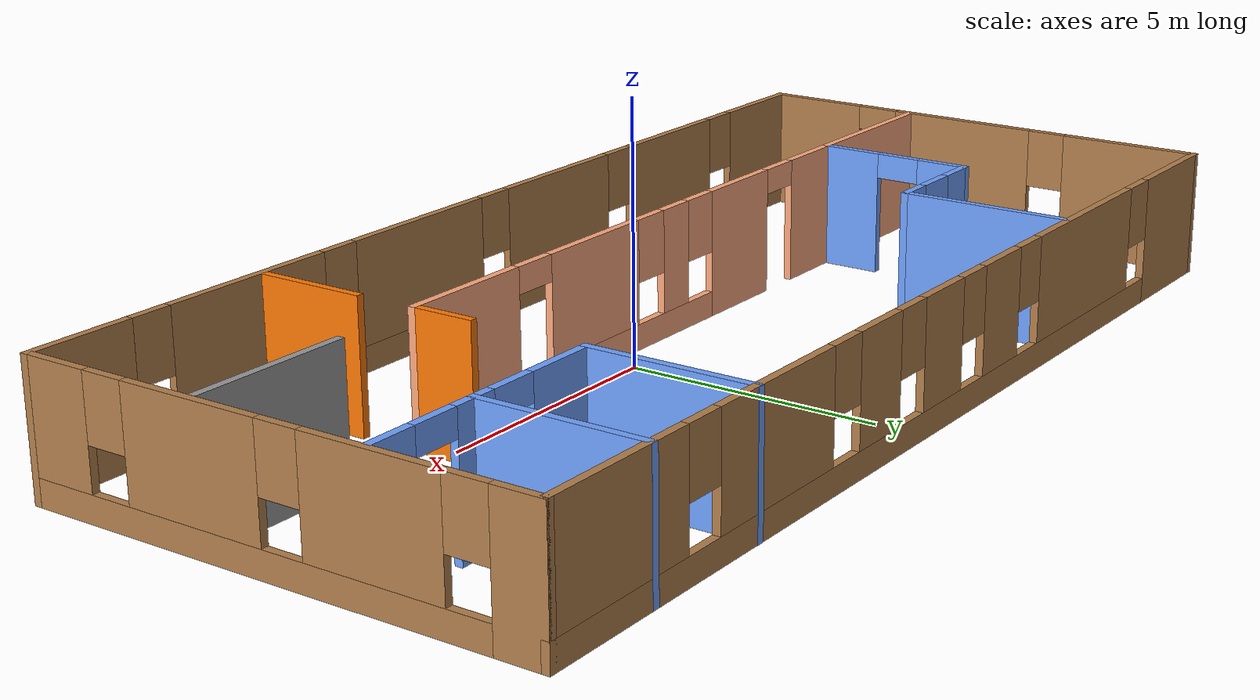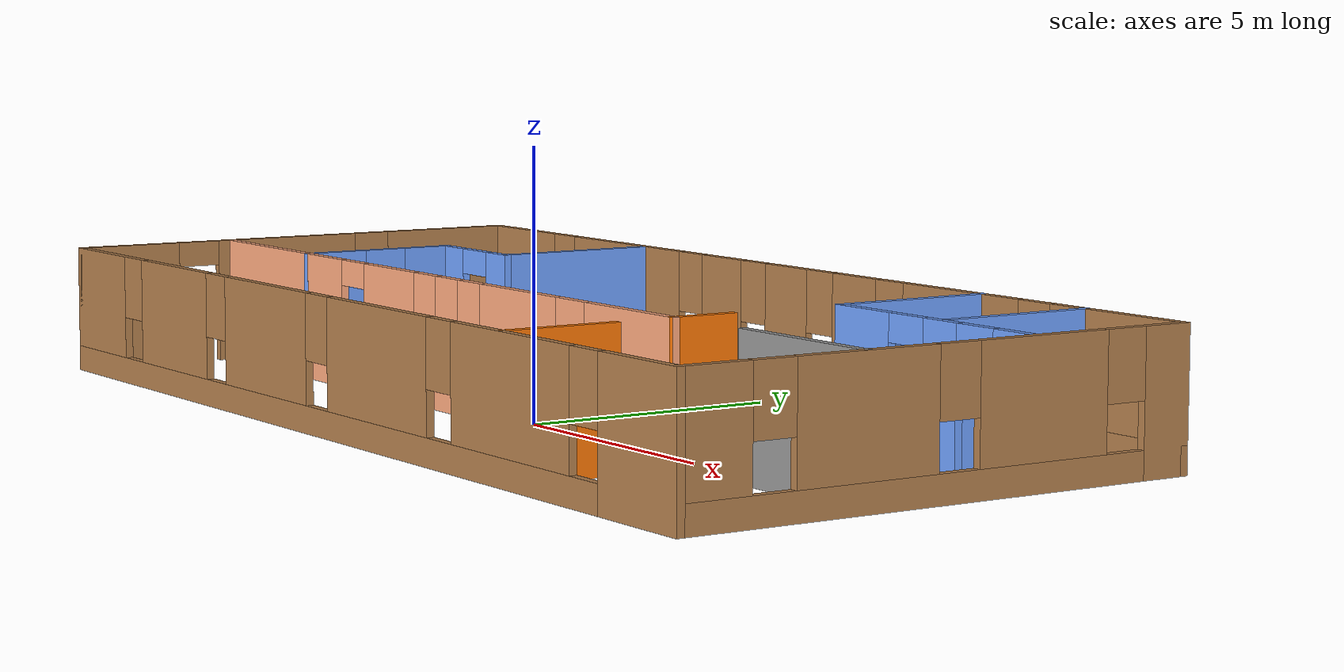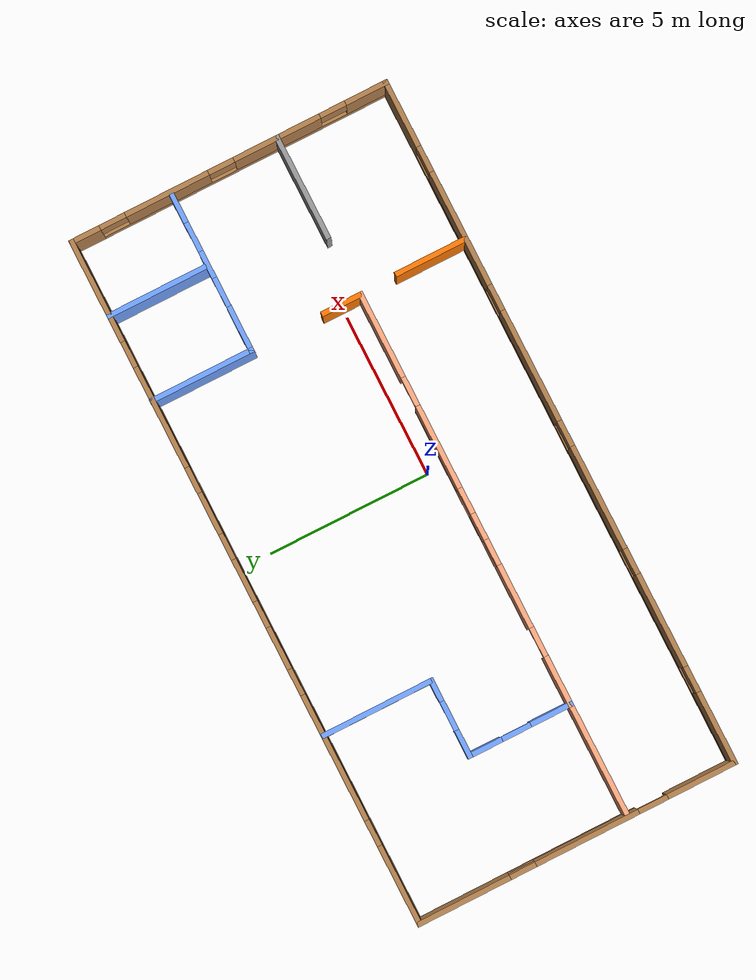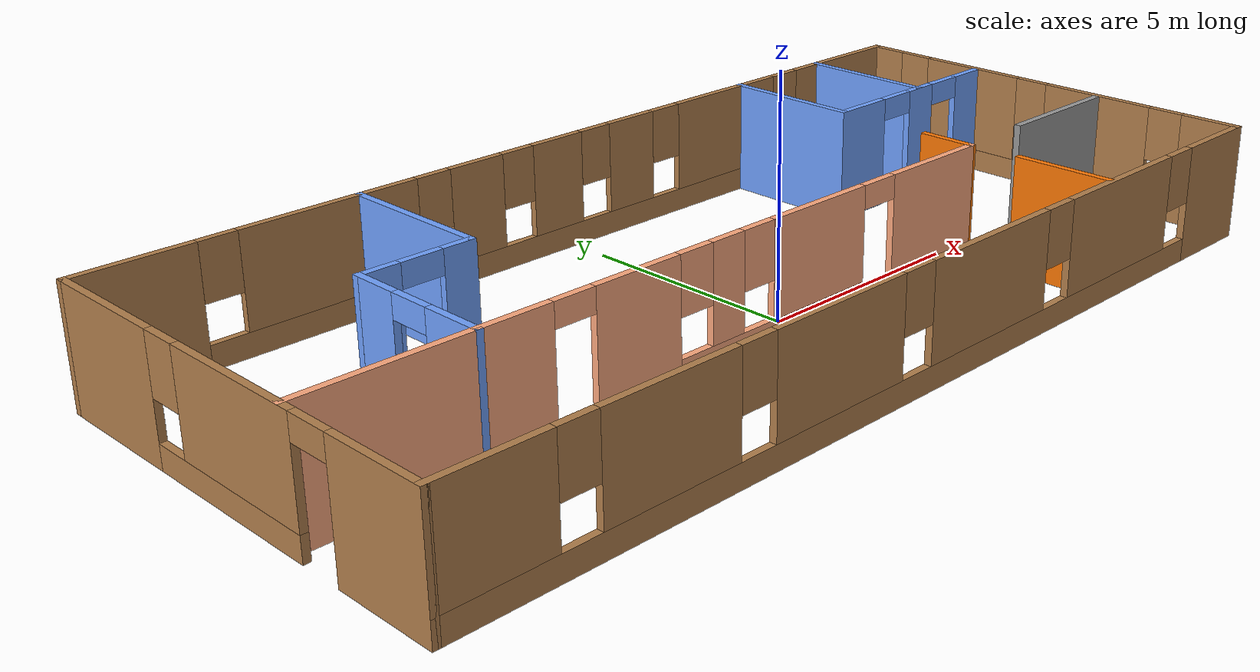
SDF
<?xml version='1.0'?>
<sdf version='1.6'>
  <model name='MyOffice'>
    <pose frame=''>-0.456046 1.03485 0 0 -0 0</pose>
    <link name='Wall_2'>
      <pose frame=''>0 4.92028 0 0 -0 1.3e-05</pose>
      <visual name='Wall_2_Visual_0'>
        <pose frame=''>-9.49743 0 1.25 0 -0 0</pose>
        <geometry>
          <box>
            <size>2.50514 0.15 2.5</size>
          </box>
        </geometry>
        <material>
          <script>
            <uri>file://media/materials/scripts/gazebo.material</uri>
            <name>Gazebo/Wood</name>
          </script>
          <ambient>0.807843 0.807843 0.807843 1</ambient>
        </material>
        <meta>
          <layer>0</layer>
        </meta>
      </visual>
      <collision name='Wall_2_Collision_0'>
        <geometry>
          <box>
            <size>2.50514 0.15 2.5</size>
          </box>
        </geometry>
        <pose frame=''>-9.49743 0 1.25 0 -0 0</pose>
      </collision>
      <visual name='Wall_2_Visual_1'>
        <pose frame=''>1.25257 0 0.25 0 -0 0</pose>
        <geometry>
          <box>
            <size>18.9949 0.15 0.5</size>
          </box>
        </geometry>
        <material>
          <script>
            <uri>file://media/materials/scripts/gazebo.material</uri>
            <name>Gazebo/Wood</name>
          </script>
          <ambient>0.807843 0.807843 0.807843 1</ambient>
        </material>
        <meta>
          <layer>0</layer>
        </meta>
      </visual>
      <collision name='Wall_2_Collision_1'>
        <geometry>
          <box>
            <size>18.9949 0.15 0.5</size>
          </box>
        </geometry>
        <pose frame=''>1.25257 0 0.25 0 -0 0</pose>
      </collision>
      <visual name='Wall_2_Visual_2'>
        <pose frame=''>-5.48641 0 1.5 0 -0 0</pose>
        <geometry>
          <box>
            <size>3.91691 0.15 2</size>
          </box>
        </geometry>
        <material>
          <script>
            <uri>file://media/materials/scripts/gazebo.material</uri>
            <name>Gazebo/Wood</name>
          </script>
          <ambient>0.807843 0.807843 0.807843 1</ambient>
        </material>
        <meta>
          <layer>0</layer>
        </meta>
      </visual>
      <collision name='Wall_2_Collision_2'>
        <geometry>
          <box>
            <size>3.91691 0.15 2</size>
          </box>
        </geometry>
        <pose frame=''>-5.48641 0 1.5 0 -0 0</pose>
      </collision>
      <visual name='Wall_2_Visual_3'>
        <pose frame=''>-2.06906 0 1.5 0 -0 0</pose>
        <geometry>
          <box>
            <size>1.3178 0.15 2</size>
          </box>
        </geometry>
        <material>
          <script>
            <uri>file://media/materials/scripts/gazebo.material</uri>
            <name>Gazebo/Wood</name>
          </script>
          <ambient>0.807843 0.807843 0.807843 1</ambient>
        </material>
        <meta>
          <layer>0</layer>
        </meta>
      </visual>
      <collision name='Wall_2_Collision_3'>
        <geometry>
          <box>
            <size>1.3178 0.15 2</size>
          </box>
        </geometry>
        <pose frame=''>-2.06906 0 1.5 0 -0 0</pose>
      </collision>
      <visual name='Wall_2_Visual_4'>
        <pose frame=''>0.048739 0 1.5 0 -0 0</pose>
        <geometry>
          <box>
            <size>1.3178 0.15 2</size>
          </box>
        </geometry>
        <material>
          <script>
            <uri>file://media/materials/scripts/gazebo.material</uri>
            <name>Gazebo/Wood</name>
          </script>
          <ambient>0.807843 0.807843 0.807843 1</ambient>
        </material>
        <meta>
          <layer>0</layer>
        </meta>
      </visual>
      <collision name='Wall_2_Collision_4'>
        <geometry>
          <box>
            <size>1.3178 0.15 2</size>
          </box>
        </geometry>
        <pose frame=''>0.048739 0 1.5 0 -0 0</pose>
      </collision>
      <visual name='Wall_2_Visual_5'>
        <pose frame=''>2.15049 0 1.5 0 -0 0</pose>
        <geometry>
          <box>
            <size>1.28571 0.15 2</size>
          </box>
        </geometry>
        <material>
          <script>
            <uri>file://media/materials/scripts/gazebo.material</uri>
            <name>Gazebo/Wood</name>
          </script>
          <ambient>0.807843 0.807843 0.807843 1</ambient>
        </material>
        <meta>
          <layer>0</layer>
        </meta>
      </visual>
      <collision name='Wall_2_Collision_5'>
        <geometry>
          <box>
            <size>1.28571 0.15 2</size>
          </box>
        </geometry>
        <pose frame=''>2.15049 0 1.5 0 -0 0</pose>
      </collision>
      <visual name='Wall_2_Visual_6'>
        <pose frame=''>5.16675 0 1.5 0 -0 0</pose>
        <geometry>
          <box>
            <size>3.1468 0.15 2</size>
          </box>
        </geometry>
        <material>
          <script>
            <uri>file://media/materials/scripts/gazebo.material</uri>
            <name>Gazebo/Wood</name>
          </script>
          <ambient>0.807843 0.807843 0.807843 1</ambient>
        </material>
        <meta>
          <layer>0</layer>
        </meta>
      </visual>
      <collision name='Wall_2_Collision_6'>
        <geometry>
          <box>
            <size>3.1468 0.15 2</size>
          </box>
        </geometry>
        <pose frame=''>5.16675 0 1.5 0 -0 0</pose>
      </collision>
      <visual name='Wall_2_Visual_7'>
        <pose frame=''>9.14507 0 1.5 0 -0 0</pose>
        <geometry>
          <box>
            <size>3.20985 0.15 2</size>
          </box>
        </geometry>
        <material>
          <script>
            <uri>file://media/materials/scripts/gazebo.material</uri>
            <name>Gazebo/Wood</name>
          </script>
          <ambient>0.807843 0.807843 0.807843 1</ambient>
        </material>
        <meta>
          <layer>0</layer>
        </meta>
      </visual>
      <collision name='Wall_2_Collision_7'>
        <geometry>
          <box>
            <size>3.20985 0.15 2</size>
          </box>
        </geometry>
        <pose frame=''>9.14507 0 1.5 0 -0 0</pose>
      </collision>
      <visual name='Wall_2_Visual_8'>
        <pose frame=''>-7.84486 0 1.9 0 -0 0</pose>
        <geometry>
          <box>
            <size>0.8 0.15 1.2</size>
          </box>
        </geometry>
        <material>
          <script>
            <uri>file://media/materials/scripts/gazebo.material</uri>
            <name>Gazebo/Wood</name>
          </script>
          <ambient>0.807843 0.807843 0.807843 1</ambient>
        </material>
        <meta>
          <layer>0</layer>
        </meta>
      </visual>
      <collision name='Wall_2_Collision_8'>
        <geometry>
          <box>
            <size>0.8 0.15 1.2</size>
          </box>
        </geometry>
        <pose frame=''>-7.84486 0 1.9 0 -0 0</pose>
      </collision>
      <visual name='Wall_2_Visual_9'>
        <pose frame=''>-3.12796 0 1.9 0 -0 0</pose>
        <geometry>
          <box>
            <size>0.8 0.15 1.2</size>
          </box>
        </geometry>
        <material>
          <script>
            <uri>file://media/materials/scripts/gazebo.material</uri>
            <name>Gazebo/Wood</name>
          </script>
          <ambient>0.807843 0.807843 0.807843 1</ambient>
        </material>
        <meta>
          <layer>0</layer>
        </meta>
      </visual>
      <collision name='Wall_2_Collision_9'>
        <geometry>
          <box>
            <size>0.8 0.15 1.2</size>
          </box>
        </geometry>
        <pose frame=''>-3.12796 0 1.9 0 -0 0</pose>
      </collision>
      <visual name='Wall_2_Visual_10'>
        <pose frame=''>-1.01016 0 1.9 0 -0 0</pose>
        <geometry>
          <box>
            <size>0.8 0.15 1.2</size>
          </box>
        </geometry>
        <material>
          <script>
            <uri>file://media/materials/scripts/gazebo.material</uri>
            <name>Gazebo/Wood</name>
          </script>
          <ambient>0.807843 0.807843 0.807843 1</ambient>
        </material>
        <meta>
          <layer>0</layer>
        </meta>
      </visual>
      <collision name='Wall_2_Collision_10'>
        <geometry>
          <box>
            <size>0.8 0.15 1.2</size>
          </box>
        </geometry>
        <pose frame=''>-1.01016 0 1.9 0 -0 0</pose>
      </collision>
      <visual name='Wall_2_Visual_11'>
        <pose frame=''>1.10764 0 1.9 0 -0 0</pose>
        <geometry>
          <box>
            <size>0.8 0.15 1.2</size>
          </box>
        </geometry>
        <material>
          <script>
            <uri>file://media/materials/scripts/gazebo.material</uri>
            <name>Gazebo/Wood</name>
          </script>
          <ambient>0.807843 0.807843 0.807843 1</ambient>
        </material>
        <meta>
          <layer>0</layer>
        </meta>
      </visual>
      <collision name='Wall_2_Collision_11'>
        <geometry>
          <box>
            <size>0.8 0.15 1.2</size>
          </box>
        </geometry>
        <pose frame=''>1.10764 0 1.9 0 -0 0</pose>
      </collision>
      <visual name='Wall_2_Visual_12'>
        <pose frame=''>3.19335 0 1.9 0 -0 0</pose>
        <geometry>
          <box>
            <size>0.8 0.15 1.2</size>
          </box>
        </geometry>
        <material>
          <script>
            <uri>file://media/materials/scripts/gazebo.material</uri>
            <name>Gazebo/Wood</name>
          </script>
          <ambient>0.807843 0.807843 0.807843 1</ambient>
        </material>
        <meta>
          <layer>0</layer>
        </meta>
      </visual>
      <collision name='Wall_2_Collision_12'>
        <geometry>
          <box>
            <size>0.8 0.15 1.2</size>
          </box>
        </geometry>
        <pose frame=''>3.19335 0 1.9 0 -0 0</pose>
      </collision>
      <visual name='Wall_2_Visual_13'>
        <pose frame=''>7.14015 0 1.9 0 -0 0</pose>
        <geometry>
          <box>
            <size>0.8 0.15 1.2</size>
          </box>
        </geometry>
        <material>
          <script>
            <uri>file://media/materials/scripts/gazebo.material</uri>
            <name>Gazebo/Wood</name>
          </script>
          <ambient>0.807843 0.807843 0.807843 1</ambient>
        </material>
        <meta>
          <layer>0</layer>
        </meta>
      </visual>
      <collision name='Wall_2_Collision_13'>
        <geometry>
          <box>
            <size>0.8 0.15 1.2</size>
          </box>
        </geometry>
        <pose frame=''>7.14015 0 1.9 0 -0 0</pose>
      </collision>
    </link>
    <link name='Wall_22'>
      <collision name='Wall_22_Collision'>
        <geometry>
          <box>
            <size>3.5 0.15 2.5</size>
          </box>
        </geometry>
        <pose frame=''>0 0 1.25 0 -0 0</pose>
      </collision>
      <visual name='Wall_22_Visual'>
        <pose frame=''>0 0 1.25 0 -0 0</pose>
        <geometry>
          <box>
            <size>3.5 0.15 2.5</size>
          </box>
        </geometry>
        <material>
          <script>
            <uri>file://media/materials/scripts/gazebo.material</uri>
            <name>Gazebo/Grey</name>
          </script>
          <ambient>0.439216 0.635294 1 1</ambient>
        </material>
        <meta>
          <layer>0</layer>
        </meta>
      </visual>
      <pose frame=''>-4.80577 3.22828 0 0 0 -1.57091</pose>
    </link>
    <link name='Wall_23'>
      <pose frame=''>-5.98095 1.55315 0 0 -0 3.14159</pose>
      <visual name='Wall_23_Visual_0'>
        <pose frame=''>-0.887295 0 1.25 0 -0 0</pose>
        <geometry>
          <box>
            <size>0.725409 0.15 2.5</size>
          </box>
        </geometry>
        <material>
          <script>
            <uri>file://media/materials/scripts/gazebo.material</uri>
            <name>Gazebo/Grey</name>
          </script>
          <ambient>0.439216 0.635294 1 1</ambient>
        </material>
        <meta>
          <layer>0</layer>
        </meta>
      </visual>
      <collision name='Wall_23_Collision_0'>
        <geometry>
          <box>
            <size>0.725409 0.15 2.5</size>
          </box>
        </geometry>
        <pose frame=''>-0.887295 0 1.25 0 -0 0</pose>
      </collision>
      <visual name='Wall_23_Visual_1'>
        <pose frame=''>0.812705 0 1.25 0 -0 0</pose>
        <geometry>
          <box>
            <size>0.874591 0.15 2.5</size>
          </box>
        </geometry>
        <material>
          <script>
            <uri>file://media/materials/scripts/gazebo.material</uri>
            <name>Gazebo/Grey</name>
          </script>
          <ambient>0.439216 0.635294 1 1</ambient>
        </material>
        <meta>
          <layer>0</layer>
        </meta>
      </visual>
      <collision name='Wall_23_Collision_1'>
        <geometry>
          <box>
            <size>0.874591 0.15 2.5</size>
          </box>
        </geometry>
        <pose frame=''>0.812705 0 1.25 0 -0 0</pose>
      </collision>
      <visual name='Wall_23_Visual_2'>
        <pose frame=''>-0.074591 0 2.25 0 -0 0</pose>
        <geometry>
          <box>
            <size>0.9 0.15 0.5</size>
          </box>
        </geometry>
        <material>
          <script>
            <uri>file://media/materials/scripts/gazebo.material</uri>
            <name>Gazebo/Grey</name>
          </script>
          <ambient>0.439216 0.635294 1 1</ambient>
        </material>
        <meta>
          <layer>0</layer>
        </meta>
      </visual>
      <collision name='Wall_23_Collision_2'>
        <geometry>
          <box>
            <size>0.9 0.15 0.5</size>
          </box>
        </geometry>
        <pose frame=''>-0.074591 0 2.25 0 -0 0</pose>
      </collision>
    </link>
    <link name='Wall_24'>
      <pose frame=''>-7.15595 -0.024354 0 0 0 -1.5708</pose>
      <visual name='Wall_24_Visual_0'>
        <pose frame=''>-1.11012 0 1.25 0 -0 0</pose>
        <geometry>
          <box>
            <size>1.08494 0.15 2.5</size>
          </box>
        </geometry>
        <material>
          <script>
            <uri>file://media/materials/scripts/gazebo.material</uri>
            <name>Gazebo/Grey</name>
          </script>
          <ambient>0.439216 0.635294 1 1</ambient>
        </material>
        <meta>
          <layer>0</layer>
        </meta>
      </visual>
      <collision name='Wall_24_Collision_0'>
        <geometry>
          <box>
            <size>1.08494 0.15 2.5</size>
          </box>
        </geometry>
        <pose frame=''>-1.11012 0 1.25 0 -0 0</pose>
      </collision>
      <visual name='Wall_24_Visual_1'>
        <pose frame=''>0.992469 0 1.25 0 -0 0</pose>
        <geometry>
          <box>
            <size>1.32024 0.15 2.5</size>
          </box>
        </geometry>
        <material>
          <script>
            <uri>file://media/materials/scripts/gazebo.material</uri>
            <name>Gazebo/Grey</name>
          </script>
          <ambient>0.439216 0.635294 1 1</ambient>
        </material>
        <meta>
          <layer>0</layer>
        </meta>
      </visual>
      <collision name='Wall_24_Collision_1'>
        <geometry>
          <box>
            <size>1.32024 0.15 2.5</size>
          </box>
        </geometry>
        <pose frame=''>0.992469 0 1.25 0 -0 0</pose>
      </collision>
      <visual name='Wall_24_Visual_2'>
        <pose frame=''>-0.117651 0 2.25 0 -0 0</pose>
        <geometry>
          <box>
            <size>0.9 0.15 0.5</size>
          </box>
        </geometry>
        <material>
          <script>
            <uri>file://media/materials/scripts/gazebo.material</uri>
            <name>Gazebo/Grey</name>
          </script>
          <ambient>0.439216 0.635294 1 1</ambient>
        </material>
        <meta>
          <layer>0</layer>
        </meta>
      </visual>
      <collision name='Wall_24_Collision_2'>
        <geometry>
          <box>
            <size>0.9 0.15 0.5</size>
          </box>
        </geometry>
        <pose frame=''>-0.117651 0 2.25 0 -0 0</pose>
      </collision>
    </link>
    <link name='Wall_25'>
      <pose frame=''>-0.730954 -1.60185 0 0 -0 0</pose>
      <visual name='Wall_25_Visual_0'>
        <pose frame=''>-5.71218 0 1.25 0 -0 0</pose>
        <geometry>
          <box>
            <size>1.57577 0.15 2.5</size>
          </box>
        </geometry>
        <material>
          <script>
            <uri>file://media/materials/scripts/gazebo.material</uri>
            <name>Gazebo/Grey</name>
          </script>
          <ambient>1 0.666667 0.498039 1</ambient>
        </material>
        <meta>
          <layer>0</layer>
        </meta>
      </visual>
      <collision name='Wall_25_Collision_0'>
        <geometry>
          <box>
            <size>1.57577 0.15 2.5</size>
          </box>
        </geometry>
        <pose frame=''>-5.71218 0 1.25 0 -0 0</pose>
      </collision>
      <visual name='Wall_25_Visual_1'>
        <pose frame=''>-3.04377 0 1.25 0 -0 0</pose>
        <geometry>
          <box>
            <size>1.96103 0.15 2.5</size>
          </box>
        </geometry>
        <material>
          <script>
            <uri>file://media/materials/scripts/gazebo.material</uri>
            <name>Gazebo/Grey</name>
          </script>
          <ambient>1 0.666667 0.498039 1</ambient>
        </material>
        <meta>
          <layer>0</layer>
        </meta>
      </visual>
      <collision name='Wall_25_Collision_1'>
        <geometry>
          <box>
            <size>1.96103 0.15 2.5</size>
          </box>
        </geometry>
        <pose frame=''>-3.04377 0 1.25 0 -0 0</pose>
      </collision>
      <visual name='Wall_25_Visual_2'>
        <pose frame=''>5.16443 0 1.25 0 -0 0</pose>
        <geometry>
          <box>
            <size>2.67125 0.15 2.5</size>
          </box>
        </geometry>
        <material>
          <script>
            <uri>file://media/materials/scripts/gazebo.material</uri>
            <name>Gazebo/Grey</name>
          </script>
          <ambient>1 0.666667 0.498039 1</ambient>
        </material>
        <meta>
          <layer>0</layer>
        </meta>
      </visual>
      <collision name='Wall_25_Collision_2'>
        <geometry>
          <box>
            <size>2.67125 0.15 2.5</size>
          </box>
        </geometry>
        <pose frame=''>5.16443 0 1.25 0 -0 0</pose>
      </collision>
      <visual name='Wall_25_Visual_3'>
        <pose frame=''>0.432774 0 0.25 0 -0 0</pose>
        <geometry>
          <box>
            <size>4.99207 0.15 0.5</size>
          </box>
        </geometry>
        <material>
          <script>
            <uri>file://media/materials/scripts/gazebo.material</uri>
            <name>Gazebo/Grey</name>
          </script>
          <ambient>1 0.666667 0.498039 1</ambient>
        </material>
        <meta>
          <layer>0</layer>
        </meta>
      </visual>
      <collision name='Wall_25_Collision_3'>
        <geometry>
          <box>
            <size>4.99207 0.15 0.5</size>
          </box>
        </geometry>
        <pose frame=''>0.432774 0 0.25 0 -0 0</pose>
      </collision>
      <visual name='Wall_25_Visual_4'>
        <pose frame=''>-0.85784 0 1.5 0 -0 0</pose>
        <geometry>
          <box>
            <size>0.810835 0.15 2</size>
          </box>
        </geometry>
        <material>
          <script>
            <uri>file://media/materials/scripts/gazebo.material</uri>
            <name>Gazebo/Grey</name>
          </script>
          <ambient>1 0.666667 0.498039 1</ambient>
        </material>
        <meta>
          <layer>0</layer>
        </meta>
      </visual>
      <collision name='Wall_25_Collision_4'>
        <geometry>
          <box>
            <size>0.810835 0.15 2</size>
          </box>
        </geometry>
        <pose frame=''>-0.85784 0 1.5 0 -0 0</pose>
      </collision>
      <visual name='Wall_25_Visual_5'>
        <pose frame=''>1.63819 0 1.5 0 -0 0</pose>
        <geometry>
          <box>
            <size>2.58123 0.15 2</size>
          </box>
        </geometry>
        <material>
          <script>
            <uri>file://media/materials/scripts/gazebo.material</uri>
            <name>Gazebo/Grey</name>
          </script>
          <ambient>1 0.666667 0.498039 1</ambient>
        </material>
        <meta>
          <layer>0</layer>
        </meta>
      </visual>
      <collision name='Wall_25_Collision_5'>
        <geometry>
          <box>
            <size>2.58123 0.15 2</size>
          </box>
        </geometry>
        <pose frame=''>1.63819 0 1.5 0 -0 0</pose>
      </collision>
      <visual name='Wall_25_Visual_6'>
        <pose frame=''>-1.66326 0 1.9 0 -0 0</pose>
        <geometry>
          <box>
            <size>0.8 0.15 1.2</size>
          </box>
        </geometry>
        <material>
          <script>
            <uri>file://media/materials/scripts/gazebo.material</uri>
            <name>Gazebo/Grey</name>
          </script>
          <ambient>1 0.666667 0.498039 1</ambient>
        </material>
        <meta>
          <layer>0</layer>
        </meta>
      </visual>
      <collision name='Wall_25_Collision_6'>
        <geometry>
          <box>
            <size>0.8 0.15 1.2</size>
          </box>
        </geometry>
        <pose frame=''>-1.66326 0 1.9 0 -0 0</pose>
      </collision>
      <visual name='Wall_25_Visual_7'>
        <pose frame=''>-0.052423 0 1.9 0 -0 0</pose>
        <geometry>
          <box>
            <size>0.8 0.15 1.2</size>
          </box>
        </geometry>
        <material>
          <script>
            <uri>file://media/materials/scripts/gazebo.material</uri>
            <name>Gazebo/Grey</name>
          </script>
          <ambient>1 0.666667 0.498039 1</ambient>
        </material>
        <meta>
          <layer>0</layer>
        </meta>
      </visual>
      <collision name='Wall_25_Collision_7'>
        <geometry>
          <box>
            <size>0.8 0.15 1.2</size>
          </box>
        </geometry>
        <pose frame=''>-0.052423 0 1.9 0 -0 0</pose>
      </collision>
      <visual name='Wall_25_Visual_8'>
        <pose frame=''>-4.47429 0 2.25 0 -0 0</pose>
        <geometry>
          <box>
            <size>0.9 0.15 0.5</size>
          </box>
        </geometry>
        <material>
          <script>
            <uri>file://media/materials/scripts/gazebo.material</uri>
            <name>Gazebo/Grey</name>
          </script>
          <ambient>1 0.666667 0.498039 1</ambient>
        </material>
        <meta>
          <layer>0</layer>
        </meta>
      </visual>
      <collision name='Wall_25_Collision_8'>
        <geometry>
          <box>
            <size>0.9 0.15 0.5</size>
          </box>
        </geometry>
        <pose frame=''>-4.47429 0 2.25 0 -0 0</pose>
      </collision>
      <visual name='Wall_25_Visual_9'>
        <pose frame=''>3.37881 0 2.25 0 -0 0</pose>
        <geometry>
          <box>
            <size>0.9 0.15 0.5</size>
          </box>
        </geometry>
        <material>
          <script>
            <uri>file://media/materials/scripts/gazebo.material</uri>
            <name>Gazebo/Grey</name>
          </script>
          <ambient>1 0.666667 0.498039 1</ambient>
        </material>
        <meta>
          <layer>0</layer>
        </meta>
      </visual>
      <collision name='Wall_25_Collision_9'>
        <geometry>
          <box>
            <size>0.9 0.15 0.5</size>
          </box>
        </geometry>
        <pose frame=''>3.37881 0 2.25 0 -0 0</pose>
      </collision>
    </link>
    <link name='Wall_26'>
      <collision name='Wall_26_Collision'>
        <geometry>
          <box>
            <size>1.30526 0.15 2.5</size>
          </box>
        </geometry>
        <pose frame=''>0 0 1.25 0 -0 0</pose>
      </collision>
      <visual name='Wall_26_Visual'>
        <pose frame=''>0 0 1.25 0 -0 0</pose>
        <geometry>
          <box>
            <size>1.30526 0.15 2.5</size>
          </box>
        </geometry>
        <material>
          <script>
            <uri>file://media/materials/scripts/gazebo.material</uri>
            <name>Gazebo/Grey</name>
          </script>
          <ambient>0.996078 0.47451 0.0196078 1</ambient>
        </material>
        <meta>
          <layer>0</layer>
        </meta>
      </visual>
      <pose frame=''>5.69423 -1.02422 0 0 -0 1.57047</pose>
    </link>
    <link name='Wall_3'>
      <pose frame=''>10.675 -0.004579 0 0 0 -1.5708</pose>
      <visual name='Wall_3_Visual_0'>
        <pose frame=''>-4.52429 0 1.25 0 -0 0</pose>
        <geometry>
          <box>
            <size>0.951416 0.15 2.5</size>
          </box>
        </geometry>
        <material>
          <script>
            <uri>file://media/materials/scripts/gazebo.material</uri>
            <name>Gazebo/Wood</name>
          </script>
          <ambient>0.807843 0.807843 0.807843 1</ambient>
        </material>
        <meta>
          <layer>0</layer>
        </meta>
      </visual>
      <collision name='Wall_3_Collision_0'>
        <geometry>
          <box>
            <size>0.951416 0.15 2.5</size>
          </box>
        </geometry>
        <pose frame=''>-4.52429 0 1.25 0 -0 0</pose>
      </collision>
      <visual name='Wall_3_Visual_1'>
        <pose frame=''>0.475708 0 0.25 0 -0 0</pose>
        <geometry>
          <box>
            <size>9.04858 0.15 0.5</size>
          </box>
        </geometry>
        <material>
          <script>
            <uri>file://media/materials/scripts/gazebo.material</uri>
            <name>Gazebo/Wood</name>
          </script>
          <ambient>0.807843 0.807843 0.807843 1</ambient>
        </material>
        <meta>
          <layer>0</layer>
        </meta>
      </visual>
      <collision name='Wall_3_Collision_1'>
        <geometry>
          <box>
            <size>9.04858 0.15 0.5</size>
          </box>
        </geometry>
        <pose frame=''>0.475708 0 0.25 0 -0 0</pose>
      </collision>
      <visual name='Wall_3_Visual_2'>
        <pose frame=''>-1.94793 0 1.5 0 -0 0</pose>
        <geometry>
          <box>
            <size>2.60131 0.15 2</size>
          </box>
        </geometry>
        <material>
          <script>
            <uri>file://media/materials/scripts/gazebo.material</uri>
            <name>Gazebo/Wood</name>
          </script>
          <ambient>0.807843 0.807843 0.807843 1</ambient>
        </material>
        <meta>
          <layer>0</layer>
        </meta>
      </visual>
      <collision name='Wall_3_Collision_2'>
        <geometry>
          <box>
            <size>2.60131 0.15 2</size>
          </box>
        </geometry>
        <pose frame=''>-1.94793 0 1.5 0 -0 0</pose>
      </collision>
      <visual name='Wall_3_Visual_3'>
        <pose frame=''>1.50151 0 1.5 0 -0 0</pose>
        <geometry>
          <box>
            <size>2.69757 0.15 2</size>
          </box>
        </geometry>
        <material>
          <script>
            <uri>file://media/materials/scripts/gazebo.material</uri>
            <name>Gazebo/Wood</name>
          </script>
          <ambient>0.807843 0.807843 0.807843 1</ambient>
        </material>
        <meta>
          <layer>0</layer>
        </meta>
      </visual>
      <collision name='Wall_3_Collision_3'>
        <geometry>
          <box>
            <size>2.69757 0.15 2</size>
          </box>
        </geometry>
        <pose frame=''>1.50151 0 1.5 0 -0 0</pose>
      </collision>
      <visual name='Wall_3_Visual_4'>
        <pose frame=''>4.32515 0 1.5 0 -0 0</pose>
        <geometry>
          <box>
            <size>1.3497 0.15 2</size>
          </box>
        </geometry>
        <material>
          <script>
            <uri>file://media/materials/scripts/gazebo.material</uri>
            <name>Gazebo/Wood</name>
          </script>
          <ambient>0.807843 0.807843 0.807843 1</ambient>
        </material>
        <meta>
          <layer>0</layer>
        </meta>
      </visual>
      <collision name='Wall_3_Collision_4'>
        <geometry>
          <box>
            <size>1.3497 0.15 2</size>
          </box>
        </geometry>
        <pose frame=''>4.32515 0 1.5 0 -0 0</pose>
      </collision>
      <visual name='Wall_3_Visual_5'>
        <pose frame=''>-3.64858 0 1.9 0 -0 0</pose>
        <geometry>
          <box>
            <size>0.8 0.15 1.2</size>
          </box>
        </geometry>
        <material>
          <script>
            <uri>file://media/materials/scripts/gazebo.material</uri>
            <name>Gazebo/Wood</name>
          </script>
          <ambient>0.807843 0.807843 0.807843 1</ambient>
        </material>
        <meta>
          <layer>0</layer>
        </meta>
      </visual>
      <collision name='Wall_3_Collision_5'>
        <geometry>
          <box>
            <size>0.8 0.15 1.2</size>
          </box>
        </geometry>
        <pose frame=''>-3.64858 0 1.9 0 -0 0</pose>
      </collision>
      <visual name='Wall_3_Visual_6'>
        <pose frame=''>-0.247275 0 1.9 0 -0 0</pose>
        <geometry>
          <box>
            <size>0.8 0.15 1.2</size>
          </box>
        </geometry>
        <material>
          <script>
            <uri>file://media/materials/scripts/gazebo.material</uri>
            <name>Gazebo/Wood</name>
          </script>
          <ambient>0.807843 0.807843 0.807843 1</ambient>
        </material>
        <meta>
          <layer>0</layer>
        </meta>
      </visual>
      <collision name='Wall_3_Collision_6'>
        <geometry>
          <box>
            <size>0.8 0.15 1.2</size>
          </box>
        </geometry>
        <pose frame=''>-0.247275 0 1.9 0 -0 0</pose>
      </collision>
      <visual name='Wall_3_Visual_7'>
        <pose frame=''>3.2503 0 1.9 0 -0 0</pose>
        <geometry>
          <box>
            <size>0.8 0.15 1.2</size>
          </box>
        </geometry>
        <material>
          <script>
            <uri>file://media/materials/scripts/gazebo.material</uri>
            <name>Gazebo/Wood</name>
          </script>
          <ambient>0.807843 0.807843 0.807843 1</ambient>
        </material>
        <meta>
          <layer>0</layer>
        </meta>
      </visual>
      <collision name='Wall_3_Collision_7'>
        <geometry>
          <box>
            <size>0.8 0.15 1.2</size>
          </box>
        </geometry>
        <pose frame=''>3.2503 0 1.9 0 -0 0</pose>
      </collision>
    </link>
    <link name='Wall_30'>
      <collision name='Wall_30_Collision'>
        <geometry>
          <box>
            <size>3.25 0.15 2.5</size>
          </box>
        </geometry>
        <pose frame=''>0 0 1.25 0 -0 0</pose>
      </collision>
      <visual name='Wall_30_Visual'>
        <pose frame=''>0 0 1.25 0 -0 0</pose>
        <geometry>
          <box>
            <size>3.25 0.15 2.5</size>
          </box>
        </geometry>
        <material>
          <script>
            <uri>file://media/materials/scripts/gazebo.material</uri>
            <name>Gazebo/Grey</name>
          </script>
          <ambient>0.439216 0.635294 1 1</ambient>
        </material>
        <meta>
          <layer>0</layer>
        </meta>
      </visual>
      <pose frame=''>5.69606 3.37986 0 0 0 -1.5708</pose>
    </link>
    <link name='Wall_31'>
      <pose frame=''>8.12106 1.82985 0 0 -0 0</pose>
      <visual name='Wall_31_Visual_0'>
        <pose frame=''>-1.77273 0 1.25 0 -0 0</pose>
        <geometry>
          <box>
            <size>1.45454 0.15 2.5</size>
          </box>
        </geometry>
        <material>
          <script>
            <uri>file://media/materials/scripts/gazebo.material</uri>
            <name>Gazebo/Grey</name>
          </script>
          <ambient>0.439216 0.635294 1 1</ambient>
        </material>
        <meta>
          <layer>0</layer>
        </meta>
      </visual>
      <collision name='Wall_31_Collision_0'>
        <geometry>
          <box>
            <size>1.45454 0.15 2.5</size>
          </box>
        </geometry>
        <pose frame=''>-1.77273 0 1.25 0 -0 0</pose>
      </collision>
      <visual name='Wall_31_Visual_1'>
        <pose frame=''>0.27171 0 1.25 0 -0 0</pose>
        <geometry>
          <box>
            <size>0.834347 0.15 2.5</size>
          </box>
        </geometry>
        <material>
          <script>
            <uri>file://media/materials/scripts/gazebo.material</uri>
            <name>Gazebo/Grey</name>
          </script>
          <ambient>0.439216 0.635294 1 1</ambient>
        </material>
        <meta>
          <layer>0</layer>
        </meta>
      </visual>
      <collision name='Wall_31_Collision_1'>
        <geometry>
          <box>
            <size>0.834347 0.15 2.5</size>
          </box>
        </geometry>
        <pose frame=''>0.27171 0 1.25 0 -0 0</pose>
      </collision>
      <visual name='Wall_31_Visual_2'>
        <pose frame=''>2.04444 0 1.25 0 -0 0</pose>
        <geometry>
          <box>
            <size>0.911117 0.15 2.5</size>
          </box>
        </geometry>
        <material>
          <script>
            <uri>file://media/materials/scripts/gazebo.material</uri>
            <name>Gazebo/Grey</name>
          </script>
          <ambient>0.439216 0.635294 1 1</ambient>
        </material>
        <meta>
          <layer>0</layer>
        </meta>
      </visual>
      <collision name='Wall_31_Collision_2'>
        <geometry>
          <box>
            <size>0.911117 0.15 2.5</size>
          </box>
        </geometry>
        <pose frame=''>2.04444 0 1.25 0 -0 0</pose>
      </collision>
      <visual name='Wall_31_Visual_3'>
        <pose frame=''>-0.595464 0 2.25 0 -0 0</pose>
        <geometry>
          <box>
            <size>0.9 0.15 0.5</size>
          </box>
        </geometry>
        <material>
          <script>
            <uri>file://media/materials/scripts/gazebo.material</uri>
            <name>Gazebo/Grey</name>
          </script>
          <ambient>0.439216 0.635294 1 1</ambient>
        </material>
        <meta>
          <layer>0</layer>
        </meta>
      </visual>
      <collision name='Wall_31_Collision_3'>
        <geometry>
          <box>
            <size>0.9 0.15 0.5</size>
          </box>
        </geometry>
        <pose frame=''>-0.595464 0 2.25 0 -0 0</pose>
      </collision>
      <visual name='Wall_31_Visual_4'>
        <pose frame=''>1.13888 0 2.25 0 -0 0</pose>
        <geometry>
          <box>
            <size>0.9 0.15 0.5</size>
          </box>
        </geometry>
        <material>
          <script>
            <uri>file://media/materials/scripts/gazebo.material</uri>
            <name>Gazebo/Grey</name>
          </script>
          <ambient>0.439216 0.635294 1 1</ambient>
        </material>
        <meta>
          <layer>0</layer>
        </meta>
      </visual>
      <collision name='Wall_31_Collision_4'>
        <geometry>
          <box>
            <size>0.9 0.15 0.5</size>
          </box>
        </geometry>
        <pose frame=''>1.13888 0 2.25 0 -0 0</pose>
      </collision>
    </link>
    <link name='Wall_33'>
      <collision name='Wall_33_Collision'>
        <geometry>
          <box>
            <size>3.241 0.15 2.5</size>
          </box>
        </geometry>
        <pose frame=''>0 0 1.25 0 -0 0</pose>
      </collision>
      <visual name='Wall_33_Visual'>
        <pose frame=''>0 0 1.25 0 -0 0</pose>
        <geometry>
          <box>
            <size>3.241 0.15 2.5</size>
          </box>
        </geometry>
        <material>
          <script>
            <uri>file://media/materials/scripts/gazebo.material</uri>
            <name>Gazebo/Grey</name>
          </script>
          <ambient>0.439216 0.635294 1 1</ambient>
        </material>
        <meta>
          <layer>0</layer>
        </meta>
      </visual>
      <pose frame=''>8.36105 3.37565 0 0 -0 1.5708</pose>
    </link>
    <link name='Wall_35'>
      <collision name='Wall_35_Collision'>
        <geometry>
          <box>
            <size>2.25 0.15 2.5</size>
          </box>
        </geometry>
        <pose frame=''>0 0 1.25 0 -0 0</pose>
      </collision>
      <visual name='Wall_35_Visual'>
        <pose frame=''>0 0 1.25 0 -0 0</pose>
        <geometry>
          <box>
            <size>2.25 0.15 2.5</size>
          </box>
        </geometry>
        <material>
          <script>
            <uri>file://media/materials/scripts/gazebo.material</uri>
            <name>Gazebo/Grey</name>
          </script>
          <ambient>0.996078 0.47451 0.0196078 1</ambient>
        </material>
        <meta>
          <layer>0</layer>
        </meta>
      </visual>
      <pose frame=''>5.75087 -3.83506 0 0 0 -1.5708</pose>
    </link>
    <link name='Wall_4'>
      <pose frame=''>0 -4.92972 0 0 0 -3.14158</pose>
      <visual name='Wall_4_Visual_0'>
        <pose frame=''>-9.70661 0 1.25 0 -0 0</pose>
        <geometry>
          <box>
            <size>2.08678 0.15 2.5</size>
          </box>
        </geometry>
        <material>
          <script>
            <uri>file://media/materials/scripts/gazebo.material</uri>
            <name>Gazebo/Wood</name>
          </script>
          <ambient>0.807843 0.807843 0.807843 1</ambient>
        </material>
        <meta>
          <layer>0</layer>
        </meta>
      </visual>
      <collision name='Wall_4_Collision_0'>
        <geometry>
          <box>
            <size>2.08678 0.15 2.5</size>
          </box>
        </geometry>
        <pose frame=''>-9.70661 0 1.25 0 -0 0</pose>
      </collision>
      <visual name='Wall_4_Visual_1'>
        <pose frame=''>1.04339 0 0.25 0 -0 0</pose>
        <geometry>
          <box>
            <size>19.4132 0.15 0.5</size>
          </box>
        </geometry>
        <material>
          <script>
            <uri>file://media/materials/scripts/gazebo.material</uri>
            <name>Gazebo/Wood</name>
          </script>
          <ambient>0.807843 0.807843 0.807843 1</ambient>
        </material>
        <meta>
          <layer>0</layer>
        </meta>
      </visual>
      <collision name='Wall_4_Collision_1'>
        <geometry>
          <box>
            <size>19.4132 0.15 0.5</size>
          </box>
        </geometry>
        <pose frame=''>1.04339 0 0.25 0 -0 0</pose>
      </collision>
      <visual name='Wall_4_Visual_2'>
        <pose frame=''>-6.08125 0 1.5 0 -0 0</pose>
        <geometry>
          <box>
            <size>3.56394 0.15 2</size>
          </box>
        </geometry>
        <material>
          <script>
            <uri>file://media/materials/scripts/gazebo.material</uri>
            <name>Gazebo/Wood</name>
          </script>
          <ambient>0.807843 0.807843 0.807843 1</ambient>
        </material>
        <meta>
          <layer>0</layer>
        </meta>
      </visual>
      <collision name='Wall_4_Collision_2'>
        <geometry>
          <box>
            <size>3.56394 0.15 2</size>
          </box>
        </geometry>
        <pose frame=''>-6.08125 0 1.5 0 -0 0</pose>
      </collision>
      <visual name='Wall_4_Visual_3'>
        <pose frame=''>-1.76544 0 1.5 0 -0 0</pose>
        <geometry>
          <box>
            <size>3.46768 0.15 2</size>
          </box>
        </geometry>
        <material>
          <script>
            <uri>file://media/materials/scripts/gazebo.material</uri>
            <name>Gazebo/Wood</name>
          </script>
          <ambient>0.807843 0.807843 0.807843 1</ambient>
        </material>
        <meta>
          <layer>0</layer>
        </meta>
      </visual>
      <collision name='Wall_4_Collision_3'>
        <geometry>
          <box>
            <size>3.46768 0.15 2</size>
          </box>
        </geometry>
        <pose frame=''>-1.76544 0 1.5 0 -0 0</pose>
      </collision>
      <visual name='Wall_4_Visual_4'>
        <pose frame=''>2.37389 0 1.5 0 -0 0</pose>
        <geometry>
          <box>
            <size>3.21098 0.15 2</size>
          </box>
        </geometry>
        <material>
          <script>
            <uri>file://media/materials/scripts/gazebo.material</uri>
            <name>Gazebo/Wood</name>
          </script>
          <ambient>0.807843 0.807843 0.807843 1</ambient>
        </material>
        <meta>
          <layer>0</layer>
        </meta>
      </visual>
      <collision name='Wall_4_Collision_4'>
        <geometry>
          <box>
            <size>3.21098 0.15 2</size>
          </box>
        </geometry>
        <pose frame=''>2.37389 0 1.5 0 -0 0</pose>
      </collision>
      <visual name='Wall_4_Visual_5'>
        <pose frame=''>6.22443 0 1.5 0 -0 0</pose>
        <geometry>
          <box>
            <size>2.8901 0.15 2</size>
          </box>
        </geometry>
        <material>
          <script>
            <uri>file://media/materials/scripts/gazebo.material</uri>
            <name>Gazebo/Wood</name>
          </script>
          <ambient>0.807843 0.807843 0.807843 1</ambient>
        </material>
        <meta>
          <layer>0</layer>
        </meta>
      </visual>
      <collision name='Wall_4_Collision_5'>
        <geometry>
          <box>
            <size>2.8901 0.15 2</size>
          </box>
        </geometry>
        <pose frame=''>6.22443 0 1.5 0 -0 0</pose>
      </collision>
      <visual name='Wall_4_Visual_6'>
        <pose frame=''>9.60974 0 1.5 0 -0 0</pose>
        <geometry>
          <box>
            <size>2.28052 0.15 2</size>
          </box>
        </geometry>
        <material>
          <script>
            <uri>file://media/materials/scripts/gazebo.material</uri>
            <name>Gazebo/Wood</name>
          </script>
          <ambient>0.807843 0.807843 0.807843 1</ambient>
        </material>
        <meta>
          <layer>0</layer>
        </meta>
      </visual>
      <collision name='Wall_4_Collision_6'>
        <geometry>
          <box>
            <size>2.28052 0.15 2</size>
          </box>
        </geometry>
        <pose frame=''>9.60974 0 1.5 0 -0 0</pose>
      </collision>
      <visual name='Wall_4_Visual_7'>
        <pose frame=''>-8.26322 0 1.9 0 -0 0</pose>
        <geometry>
          <box>
            <size>0.8 0.15 1.2</size>
          </box>
        </geometry>
        <material>
          <script>
            <uri>file://media/materials/scripts/gazebo.material</uri>
            <name>Gazebo/Wood</name>
          </script>
          <ambient>0.807843 0.807843 0.807843 1</ambient>
        </material>
        <meta>
          <layer>0</layer>
        </meta>
      </visual>
      <collision name='Wall_4_Collision_7'>
        <geometry>
          <box>
            <size>0.8 0.15 1.2</size>
          </box>
        </geometry>
        <pose frame=''>-8.26322 0 1.9 0 -0 0</pose>
      </collision>
      <visual name='Wall_4_Visual_8'>
        <pose frame=''>-3.89928 0 1.9 0 -0 0</pose>
        <geometry>
          <box>
            <size>0.8 0.15 1.2</size>
          </box>
        </geometry>
        <material>
          <script>
            <uri>file://media/materials/scripts/gazebo.material</uri>
            <name>Gazebo/Wood</name>
          </script>
          <ambient>0.807843 0.807843 0.807843 1</ambient>
        </material>
        <meta>
          <layer>0</layer>
        </meta>
      </visual>
      <collision name='Wall_4_Collision_8'>
        <geometry>
          <box>
            <size>0.8 0.15 1.2</size>
          </box>
        </geometry>
        <pose frame=''>-3.89928 0 1.9 0 -0 0</pose>
      </collision>
      <visual name='Wall_4_Visual_9'>
        <pose frame=''>0.368402 0 1.9 0 -0 0</pose>
        <geometry>
          <box>
            <size>0.8 0.15 1.2</size>
          </box>
        </geometry>
        <material>
          <script>
            <uri>file://media/materials/scripts/gazebo.material</uri>
            <name>Gazebo/Wood</name>
          </script>
          <ambient>0.807843 0.807843 0.807843 1</ambient>
        </material>
        <meta>
          <layer>0</layer>
        </meta>
      </visual>
      <collision name='Wall_4_Collision_9'>
        <geometry>
          <box>
            <size>0.8 0.15 1.2</size>
          </box>
        </geometry>
        <pose frame=''>0.368402 0 1.9 0 -0 0</pose>
      </collision>
      <visual name='Wall_4_Visual_10'>
        <pose frame=''>4.37938 0 1.9 0 -0 0</pose>
        <geometry>
          <box>
            <size>0.8 0.15 1.2</size>
          </box>
        </geometry>
        <material>
          <script>
            <uri>file://media/materials/scripts/gazebo.material</uri>
            <name>Gazebo/Wood</name>
          </script>
          <ambient>0.807843 0.807843 0.807843 1</ambient>
        </material>
        <meta>
          <layer>0</layer>
        </meta>
      </visual>
      <collision name='Wall_4_Collision_10'>
        <geometry>
          <box>
            <size>0.8 0.15 1.2</size>
          </box>
        </geometry>
        <pose frame=''>4.37938 0 1.9 0 -0 0</pose>
      </collision>
      <visual name='Wall_4_Visual_11'>
        <pose frame=''>8.06948 0 1.9 0 -0 0</pose>
        <geometry>
          <box>
            <size>0.8 0.15 1.2</size>
          </box>
        </geometry>
        <material>
          <script>
            <uri>file://media/materials/scripts/gazebo.material</uri>
            <name>Gazebo/Wood</name>
          </script>
          <ambient>0.807843 0.807843 0.807843 1</ambient>
        </material>
        <meta>
          <layer>0</layer>
        </meta>
      </visual>
      <collision name='Wall_4_Collision_11'>
        <geometry>
          <box>
            <size>0.8 0.15 1.2</size>
          </box>
        </geometry>
        <pose frame=''>8.06948 0 1.9 0 -0 0</pose>
      </collision>
    </link>
    <link name='Wall_41'>
      <collision name='Wall_41_Collision'>
        <geometry>
          <box>
            <size>3.25 0.15 2.5</size>
          </box>
        </geometry>
        <pose frame=''>0 0 1.25 0 -0 0</pose>
      </collision>
      <visual name='Wall_41_Visual'>
        <pose frame=''>0 0 1.25 0 -0 0</pose>
        <geometry>
          <box>
            <size>3.25 0.15 2.5</size>
          </box>
        </geometry>
        <material>
          <script>
            <uri>file://media/materials/scripts/gazebo.material</uri>
            <name>Gazebo/Grey</name>
          </script>
          <ambient>0.807843 0.807843 0.807843 1</ambient>
        </material>
        <meta>
          <layer>0</layer>
        </meta>
      </visual>
      <pose frame=''>9.11847 -1.516 0 0 -0 3.14159</pose>
    </link>
    <link name='Wall_47'>
      <collision name='Wall_47_Collision'>
        <geometry>
          <box>
            <size>3.669 0.15 2.5</size>
          </box>
        </geometry>
        <pose frame=''>0 0 1.25 0 -0 0</pose>
      </collision>
      <visual name='Wall_47_Visual'>
        <pose frame=''>0 0 1.25 0 -0 0</pose>
        <geometry>
          <box>
            <size>3.669 0.15 2.5</size>
          </box>
        </geometry>
        <material>
          <script>
            <uri>file://media/materials/scripts/gazebo.material</uri>
            <name>Gazebo/Grey</name>
          </script>
          <ambient>1 0.666667 0.498039 1</ambient>
        </material>
        <meta>
          <layer>0</layer>
        </meta>
      </visual>
      <pose frame=''>-8.91545 -1.60185 0 0 -0 3.14159</pose>
    </link>
    <link name='Wall_7'>
      <pose frame=''>-10.675 -0.004854 0 0 0 -1.5708</pose>
      <visual name='Wall_7_Visual_0'>
        <pose frame=''>-3.54575 0 1.25 0 -0 0</pose>
        <geometry>
          <box>
            <size>2.9085 0.15 2.5</size>
          </box>
        </geometry>
        <material>
          <script>
            <uri>file://media/materials/scripts/gazebo.material</uri>
            <name>Gazebo/Wood</name>
          </script>
          <ambient>0.807843 0.807843 0.807843 1</ambient>
        </material>
        <meta>
          <layer>0</layer>
        </meta>
      </visual>
      <collision name='Wall_7_Collision_0'>
        <geometry>
          <box>
            <size>2.9085 0.15 2.5</size>
          </box>
        </geometry>
        <pose frame=''>-3.54575 0 1.25 0 -0 0</pose>
      </collision>
      <visual name='Wall_7_Visual_1'>
        <pose frame=''>3.91211 0 1.25 0 -0 0</pose>
        <geometry>
          <box>
            <size>2.17578 0.15 2.5</size>
          </box>
        </geometry>
        <material>
          <script>
            <uri>file://media/materials/scripts/gazebo.material</uri>
            <name>Gazebo/Wood</name>
          </script>
          <ambient>0.807843 0.807843 0.807843 1</ambient>
        </material>
        <meta>
          <layer>0</layer>
        </meta>
      </visual>
      <collision name='Wall_7_Collision_1'>
        <geometry>
          <box>
            <size>2.17578 0.15 2.5</size>
          </box>
        </geometry>
        <pose frame=''>3.91211 0 1.25 0 -0 0</pose>
      </collision>
      <visual name='Wall_7_Visual_2'>
        <pose frame=''>-0.083643 0 0.25 0 -0 0</pose>
        <geometry>
          <box>
            <size>4.01572 0.15 0.5</size>
          </box>
        </geometry>
        <material>
          <script>
            <uri>file://media/materials/scripts/gazebo.material</uri>
            <name>Gazebo/Wood</name>
          </script>
          <ambient>0.807843 0.807843 0.807843 1</ambient>
        </material>
        <meta>
          <layer>0</layer>
        </meta>
      </visual>
      <collision name='Wall_7_Collision_2'>
        <geometry>
          <box>
            <size>4.01572 0.15 0.5</size>
          </box>
        </geometry>
        <pose frame=''>-0.083643 0 0.25 0 -0 0</pose>
      </collision>
      <visual name='Wall_7_Visual_3'>
        <pose frame=''>0.316357 0 1.5 0 -0 0</pose>
        <geometry>
          <box>
            <size>3.21572 0.15 2</size>
          </box>
        </geometry>
        <material>
          <script>
            <uri>file://media/materials/scripts/gazebo.material</uri>
            <name>Gazebo/Wood</name>
          </script>
          <ambient>0.807843 0.807843 0.807843 1</ambient>
        </material>
        <meta>
          <layer>0</layer>
        </meta>
      </visual>
      <collision name='Wall_7_Collision_3'>
        <geometry>
          <box>
            <size>3.21572 0.15 2</size>
          </box>
        </geometry>
        <pose frame=''>0.316357 0 1.5 0 -0 0</pose>
      </collision>
      <visual name='Wall_7_Visual_4'>
        <pose frame=''>-1.6915 0 1.9 0 -0 0</pose>
        <geometry>
          <box>
            <size>0.8 0.15 1.2</size>
          </box>
        </geometry>
        <material>
          <script>
            <uri>file://media/materials/scripts/gazebo.material</uri>
            <name>Gazebo/Wood</name>
          </script>
          <ambient>0.807843 0.807843 0.807843 1</ambient>
        </material>
        <meta>
          <layer>0</layer>
        </meta>
      </visual>
      <collision name='Wall_7_Collision_4'>
        <geometry>
          <box>
            <size>0.8 0.15 1.2</size>
          </box>
        </geometry>
        <pose frame=''>-1.6915 0 1.9 0 -0 0</pose>
      </collision>
      <visual name='Wall_7_Visual_5'>
        <pose frame=''>2.37422 0 2.25 0 -0 0</pose>
        <geometry>
          <box>
            <size>0.9 0.15 0.5</size>
          </box>
        </geometry>
        <material>
          <script>
            <uri>file://media/materials/scripts/gazebo.material</uri>
            <name>Gazebo/Wood</name>
          </script>
          <ambient>0.807843 0.807843 0.807843 1</ambient>
        </material>
        <meta>
          <layer>0</layer>
        </meta>
      </visual>
      <collision name='Wall_7_Collision_5'>
        <geometry>
          <box>
            <size>0.9 0.15 0.5</size>
          </box>
        </geometry>
        <pose frame=''>2.37422 0 2.25 0 -0 0</pose>
      </collision>
    </link>
    <static>1</static>
  </model>
</sdf>
